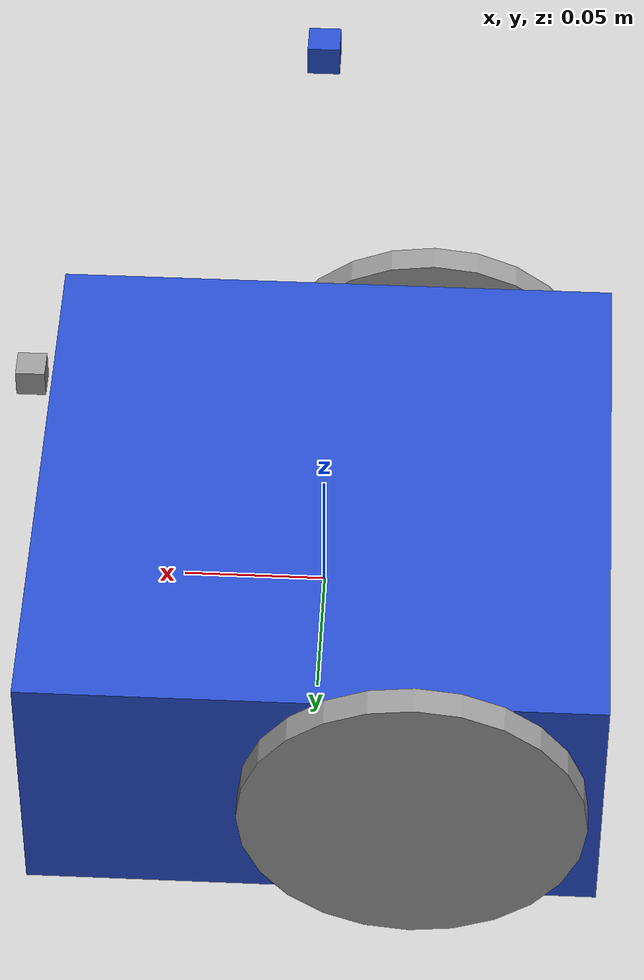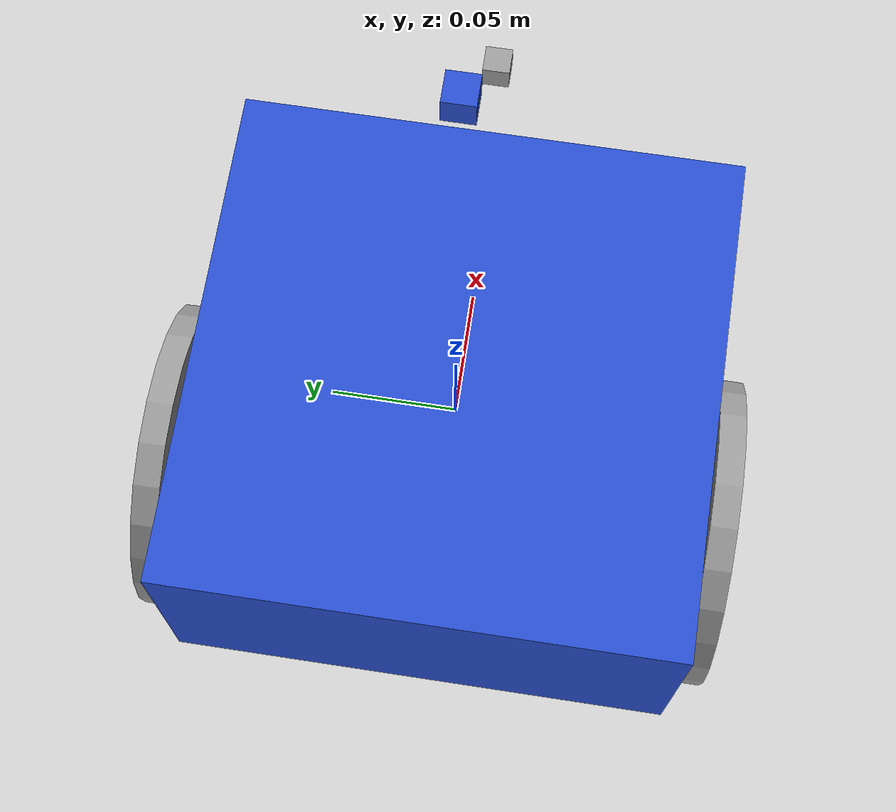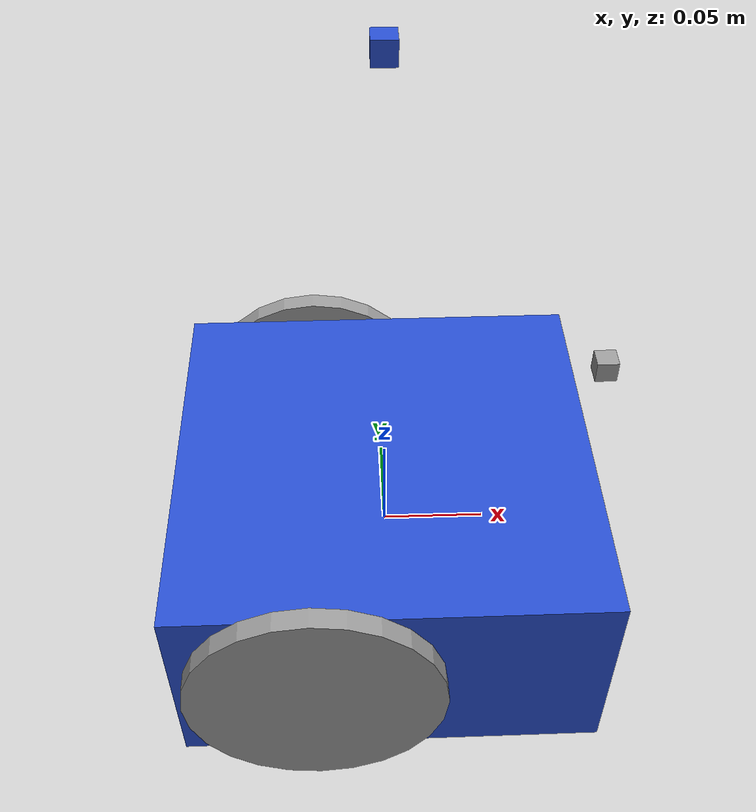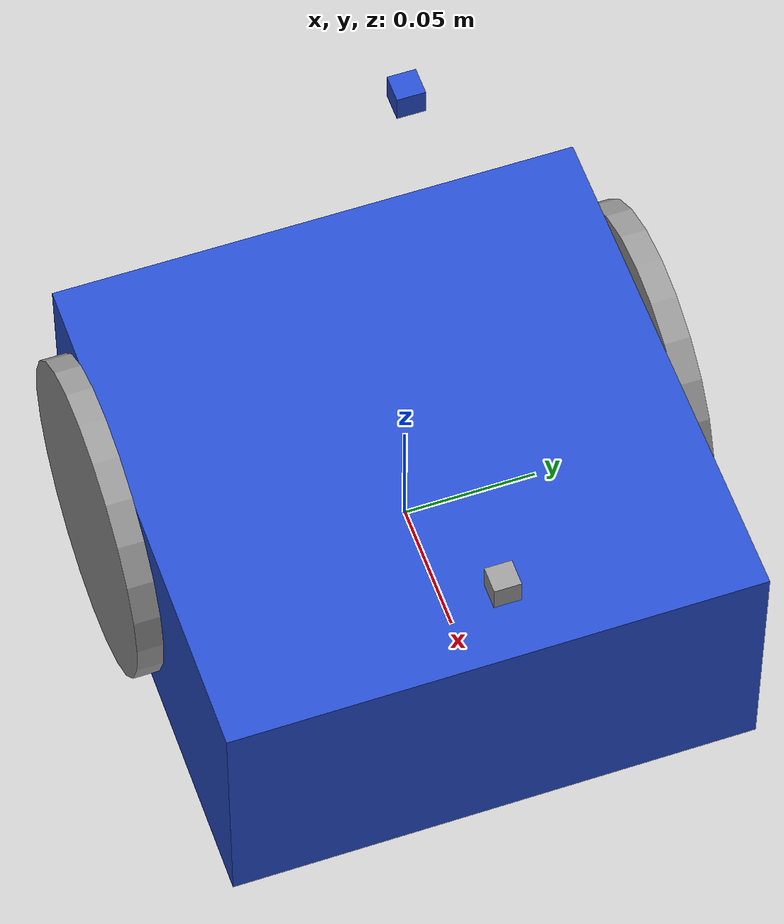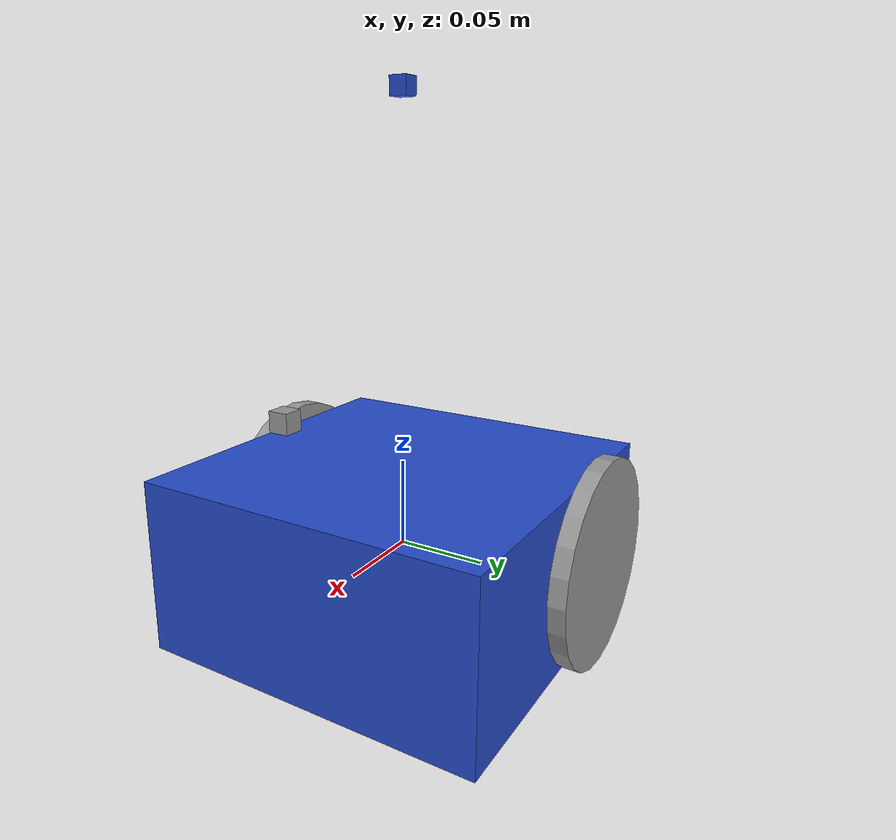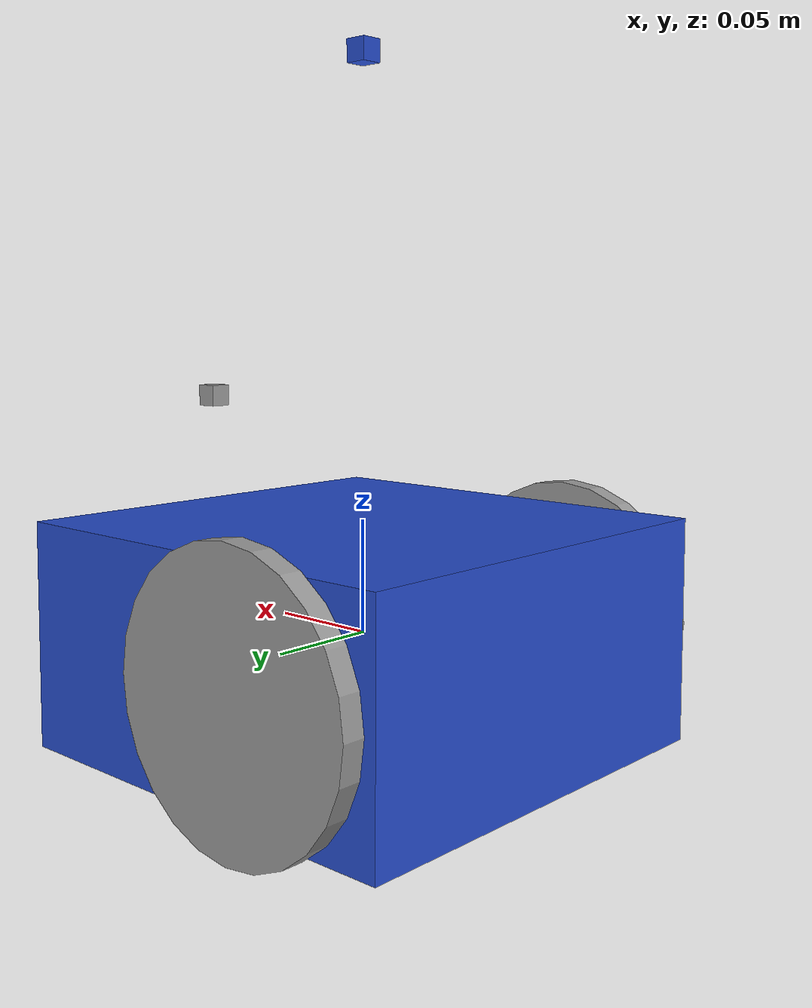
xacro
<?xml version="1.0"?>
<robot name="bot" xmlns:xacro="http://www.ros.org/wiki/xacro">

    <xacro:include filename="common_properties.xacro" />

    <link name="base_link">
        <visual>
            <geometry>
                <box size="0.2 0.2 0.1" />
            </geometry>
            <origin xyz="0 0 0" rpy="0 0 0" />
            <material name="blue" />
        </visual>
        <collision>
            <geometry>
                <box size="0.2 0.2 0.1" />
            </geometry>
            <origin xyz="0 0 0" rpy="0 0 0" />
        </collision>
        <xacro:box_inertia m="2.5" l="0.2" w="0.2" h="0.1"
            xyz="0 0 0" rpy="0 0 0" />
    </link>

    <link name="right_wheel_link">
        <visual>
            <geometry>
                <cylinder radius="0.06" length="0.01" />
            </geometry>
            <origin xyz="0 0 0" rpy="1.57 0 0" />
            <material name="grey" />
        </visual>
        <collision>
            <geometry>
                <cylinder radius="0.06" length="0.01" />
            </geometry>
            <origin xyz="0 0 0" rpy="1.57 0 0" />
        </collision>
        <xacro:cylinder_inertia m="0.5" r="0.06" h="0.01" xyz="0 0 0" rpy="1.57 0 0" />
    </link>

    <link name="left_wheel_link">
        <visual>
            <geometry>
                <cylinder radius="0.06" length="0.01" />
            </geometry>
            <origin xyz="0 0 0" rpy="1.57 0 0" />
            <material name="grey" />
        </visual>
        <collision>
            <geometry>
                <cylinder radius="0.06" length="0.01" />
            </geometry>
            <origin xyz="0 0 0" rpy="1.57 0 0" />
        </collision>
        <xacro:cylinder_inertia m="0.5" r="0.06" h="0.01" xyz="0 0 0" rpy="1.57 0 0" />
    </link>

    <link name="caster_wheel_link">
        <visual>
            <geometry>
                <sphere radius="0.021" />
            </geometry>
            <origin xyz="0 0 0" rpy="0 0 0" />
            <material name="grey" />
        </visual>
        <collision>
            <geometry>
                <sphere radius="0.021" />
            </geometry>
            <origin xyz="0 0 0" rpy="0 0 0" />
        </collision>
        <xacro:sphere_inertia m="0.25" r="0.021" xyz="0 0 0" rpy="0 0 0" />
    </link>

    <!-- Fixed joint to place base_link at correct height -->

    <!-- Wheel joints with precise positioning -->
    <joint name="base_right_wheel_joint" type="continuous">
        <parent link="base_link"/>
        <child link="right_wheel_link"/>
        <origin xyz="-0.035 -0.105 0" rpy="0 0 0"/>
        <axis xyz="0 1 0"/>
    </joint>

    <joint name="base_left_wheel_joint" type="continuous">
        <parent link="base_link"/>
        <child link="left_wheel_link"/>
        <origin xyz="-0.035 0.105 0" rpy="0 0 0"/>
        <axis xyz="0 1 0"/>
    </joint>

    <joint name="base_caster_wheel_joint" type="fixed">
        <parent link="base_link"/>
        <child link="caster_wheel_link"/>
        <origin xyz="0.071 0 -0.039" rpy="0 0 0"/>
    </joint>

    <!-- Lidar Link -->
    <link name="lidar_centre">
        <visual>
            <geometry>
                <box size="0.01 0.01 0.01"/>
            </geometry>
        </visual>
        <collision>
            <geometry>
                <box size="0.01 0.01 0.01"/>
            </geometry>
        </collision>
        <xacro:box_inertia m="0.01" l="0.01" w="0.01" h="0.01"
            xyz="0 0 0" rpy="0 0 0" />
    </link>

    <joint name="lidar_joint" type="fixed">
        <parent link="base_link"/>
        <child link="lidar_centre"/>
        <origin xyz="0 0 0.25" rpy="0 0 0"/>
    </joint>

    <!-- Camera Link -->
    <link name="camera_link">
        <visual>
            <geometry>
                <box size="0.01 0.01 0.01"/>
            </geometry>
            <material name="grey"/>
        </visual>
        <collision>
            <geometry>
                <box size="0.01 0.01 0.01"/>
            </geometry>
        </collision>
        <xacro:box_inertia m="0.01" l="0.01" w="0.01" h="0.01"
            xyz="0 0 0" rpy="0 0 0" />
    </link>

    <joint name="camera_joint" type="fixed">
        <parent link="base_link"/>
        <child link="camera_link"/>
        <origin xyz="0.1 0 0.1" rpy="0 0 0"/>
    </joint>

    <!-- Gazebo Plugins -->
    <!-- Joint State Publisher Plugin -->
    <gazebo>
        <plugin name="gazebo_ros_joint_state_publisher" filename="libgazebo_ros_joint_state_publisher.so">
            <ros>
                <remapping>~/out:=joint_states</remapping>
            </ros>
            <update_rate>30</update_rate>
            <joint_name>base_left_wheel_joint</joint_name>
            <joint_name>base_right_wheel_joint</joint_name>
        </plugin>
    </gazebo>

    <!-- Lidar Plugin -->
    <gazebo reference="lidar_centre">
        <material>Gazebo/Blue</material>
        <sensor name="laser" type="ray">
            <pose>0 0 0 0 0 0</pose>
            <visualize>true</visualize>
            <update_rate>30</update_rate>
            <ray>
                <scan>
                    <horizontal>
                        <samples>540</samples>
                        <min_angle>-3.14</min_angle>
                        <max_angle>3.14</max_angle>
                    </horizontal>
                </scan>
                <range>
                    <min>0.3</min>
                    <max>35</max>
                    <resolution>0.01</resolution>
                </range>
            </ray>
            <plugin name="laser_plugin" filename="libgazebo_ros_ray_sensor.so">
                <ros>
                    <namespace>/</namespace>
                    <remapping>~/out:=scan</remapping>
                </ros>
                <output_type>sensor_msgs/LaserScan</output_type>
                <frame_name>lidar_centre</frame_name>
            </plugin>
        </sensor>
    </gazebo>

    <!-- RGB Camera Plugin for ROS2 Humble -->
    <gazebo reference="camera_link">
        <sensor type="camera" name="camera">
            <update_rate>30.0</update_rate>
            <camera name="head">
                <horizontal_fov>1.3962634</horizontal_fov>
                <image>
                    <width>800</width>
                    <height>600</height>
                    <format>R8G8B8</format>
                </image>
                <clip>
                    <near>0.02</near>
                    <far>300</far>
                </clip>
                <noise>
                    <type>gaussian</type>
                    <mean>0.0</mean>
                    <stddev>0.007</stddev>
                </noise>
            </camera>
            <plugin name="camera_controller" filename="libgazebo_ros_camera.so">
                <ros>
                    <namespace>/</namespace>
                    <remapping>image_raw:=camera/image_raw</remapping>
                    <remapping>camera_info:=camera/camera_info</remapping>
                </ros>
                <camera_name>camera</camera_name>
                <frame_name>camera_link</frame_name>
                <hack_baseline>0.07</hack_baseline>
            </plugin>
        </sensor>
    </gazebo>

    <!-- Differential Drive Plugin -->
    <gazebo>
        <plugin name="bot_diff_drive" filename="libgazebo_ros_diff_drive.so">
            <!-- Wheel Information -->
            <update_rate>30</update_rate>
            <left_joint>base_left_wheel_joint</left_joint>
            <right_joint>base_right_wheel_joint</right_joint>
            <wheel_separation>0.210</wheel_separation>
            <wheel_diameter>0.120</wheel_diameter>

            <!-- Limits -->
            <max_wheel_torque>2.0</max_wheel_torque>
            <max_wheel_acceleration>2.0</max_wheel_acceleration>

            <!-- Output -->
            <command_topic>cmd_vel</command_topic>
            <publish_odom>true</publish_odom>
            <publish_odom_tf>true</publish_odom_tf>
            <odometry_frame>odom</odometry_frame>
            <robot_base_frame>base_link</robot_base_frame>
            <publish_wheel_tf>true</publish_wheel_tf>
        </plugin>
    </gazebo>
</robot>
